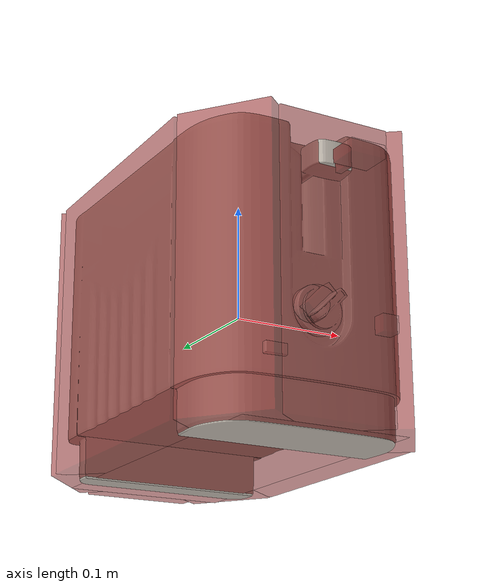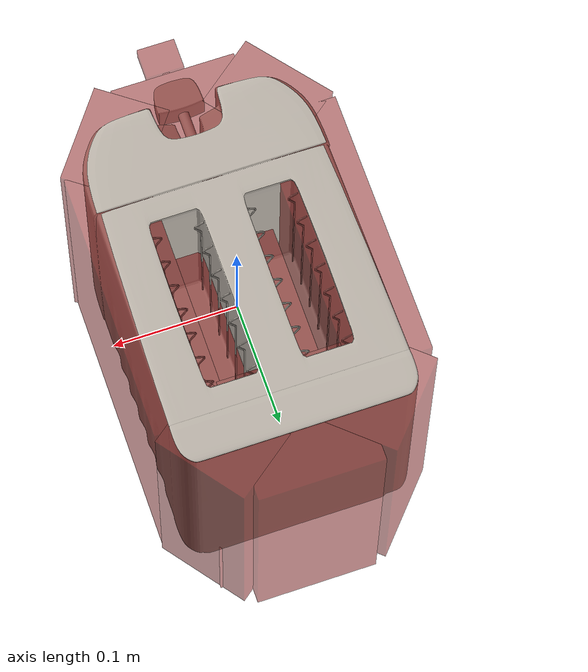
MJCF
<?xml version='1.0' encoding='UTF-8'?>
<mujoco model="model">
  <option timestep="0.002" gravity="0.0 0.0 -9.81"/>
  <compiler angle="radian"/>
  <asset>
    <mesh file="visuals/button_cancel.obj" name="button_cancel_vis"/>
    <mesh file="visuals/knob_doneness.obj" name="knob_doneness_vis"/>
    <mesh file="visuals/lever.obj" name="lever_vis"/>
    <mesh file="visuals/Body001.obj" name="Body001_vis"/>
    <mesh file="visuals/Body002.obj" name="Body002_vis"/>
    <texture file="visuals/T_BC001.png" name="Body001_material" type="2d"/>
    <material name="Body001_material" rgba="1 1 1 1.0" texture="Body001_material" shininess="0.141421377658844" specular="0.3103448502657381"/>
    <texture file="visuals/T_BC001.png" name="button_cancel_material" type="2d"/>
    <material name="button_cancel_material" rgba="1 1 1 1.0" texture="button_cancel_material" shininess="0.141421377658844" specular="0.3103448502657381"/>
    <texture file="visuals/T_BC001.png" name="knob_doneness_material" type="2d"/>
    <material name="knob_doneness_material" rgba="1 1 1 1.0" texture="knob_doneness_material" shininess="0.141421377658844" specular="0.3103448502657381"/>
    <texture file="visuals/T_BC001.png" name="lever_material" type="2d"/>
    <material name="lever_material" rgba="1 1 1 1.0" texture="lever_material" shininess="0.141421377658844" specular="0.3103448502657381"/>
    <texture file="visuals/T_BC001.png" name="Body002_material" type="2d"/>
    <material name="Body002_material" rgba="1 1 1 1.0" texture="Body002_material" shininess="1" specular="1"/>
  </asset>
  <default>
    <default class="visual">
      <geom conaffinity="0" contype="0" group="1" type="mesh"/>
    </default>
    <default class="collision_1">
      <geom group="0" rgba="0.5 0 0 0.5" solref="0.004 1" solimp="0.998 0.998 0.001"/>
    </default>
    <default class="collision_2">
      <geom group="0" rgba="0.5 0 0 0.5" solref="0.004 1" solimp="0.998 0.998 0.001"/>
    </default>
    <default class="collision_3">
      <geom group="0" rgba="0.5 0 0 0.5" solref="0.004 1" solimp="0.998 0.998 0.001"/>
    </default>
    <default class="collision_4">
      <geom group="0" rgba="0.5 0 0 0.5" solref="0.004 1" solimp="0.998 0.998 0.001"/>
    </default>
    <default class="collision_5">
      <geom group="0" rgba="0.5 0 0 0.5" solref="0.004 1" solimp="0.998 0.998 0.001"/>
    </default>
    <default class="spawn">
      <geom group="0" rgba="1 1 1 0.5" contype="0" conaffinity="0"/>
      <site group="0" rgba="1 1 1 0.5"/>
    </default>
    <default class="region">
      <geom group="1" conaffinity="0" contype="0" rgba="0 1 0 0" mass="0"/>
    </default>
  </default>
  <worldbody>
    <body>
      <body name="object">
        <geom mesh="Body001_vis" type="mesh" solimp="0.998 0.998 0.001" solref="0.001 1" friction="0.95 0.3 0.1" class="visual" material="Body001_material"/>
        <geom type="box" pos="-3.6107285268371925e-05 0.020393606275320053 -0.07308340072631836" size="0.07271113246679306 0.15268869698047638 0.04766560718417168" quat="1.0 0.0 0.0 0.0" class="collision_1"/>
        <geom type="box" pos="0.07554543763399124 0.016201067715883255 0.0003441762237343937" size="0.029112735763192177 0.10687019675970078 0.12074115127325058" quat="1.0 0.0 0.0 0.0" class="collision_1"/>
        <geom type="box" pos="-0.07748235762119293 0.01620105654001236 0.0003441762237343937" size="0.031209014356136322 0.10687022656202316 0.12074117362499237" quat="1.0 0.0 0.0 0.0" class="collision_1"/>
        <geom type="box" pos="0.000528864620719105 0.1457206904888153 0.0003441762237343937" size="0.04872778058052063 0.048025019466876984 0.12074119597673416" quat="1.0 0.0 0.0 0.0" class="collision_1"/>
        <geom type="box" pos="0.0005288839456625283 -0.11038106679916382 0.0003441762237343937" size="0.04872778430581093 0.03891860693693161 0.12074121832847595" quat="1.0 0.0 0.0 0.0" class="collision_1"/>
        <geom type="box" pos="-0.06080323085188866 -0.10723009705543518 0.0003441762237343937" size="0.03891861438751221 0.029805803671479225 0.12074137479066849" quat="0.8995000720024109 0.0 0.0 -0.4369206726551056" class="collision_1"/>
        <geom type="box" pos="0.05960759148001671 -0.10679752379655838 0.0003441762237343937" size="0.038918618112802505 0.029805809259414673 0.12074137479066849" quat="0.447503000497818 0.0 0.0 -0.8942824006080627" class="collision_1"/>
        <geom type="box" pos="0.0583539679646492 0.14013373851776123 0.0003441762237343937" size="0.03891861438751221 0.029805803671479225 0.12074137479066849" quat="0.8950638771057129 0.0 0.0 -0.44593796133995056" class="collision_1"/>
        <geom type="box" pos="-0.06130402162671089 0.14134547114372253 0.0003441762237343937" size="0.038918618112802505 0.029805809259414673 0.12074137479066849" quat="0.9127457737922668 0.0 0.0 0.40852802991867065" class="collision_1"/>
        <geom type="box" pos="-7.005915540503338e-05 0.014763657003641129 0.0003441762237343937" size="0.008299797773361206 0.08860282599925995 0.12074124068021774" quat="1.0 0.0 0.0 0.0" class="collision_1"/>
        <body name="button_cancel">
          <joint axis="0.0 1.0 0.0" pos="0.030514664947986603 -0.16445860266685486 -0.04799271374940872" limited="true" name="button_cancel_joint" range="0.0 0.0015" type="slide" damping="1" frictionloss="1" armature=".01" stiffness="4" springref="-1"/>
          <geom mesh="button_cancel_vis" type="mesh" solimp="0.998 0.998 0.001" solref="0.001 1" friction="0.95 0.3 0.1" class="visual" material="button_cancel_material"/>
          <geom class="collision_2" type="box" pos="0.030507957562804222 -0.16649582982063293 -0.04799039661884308" size="0.006886498536914587 0.005580628290772438 0.006886496674269438" quat="1.0 0.0 0.0 0.0" name="button_cancel_main"/>
        </body>
        <body name="knob_doneness">
          <joint axis="0.0 1.0 0.0" pos="-0.035046085715293884 -0.169930562376976 -0.04223669692873955" limited="true" name="knob_doneness_joint" range="0.0 4.625122517784973" type="hinge" damping="0.05" armature="1" frictionloss="0.75"/>
          <geom mesh="knob_doneness_vis" type="mesh" solimp="0.998 0.998 0.001" solref="0.001 1" friction="0.95 0.3 0.1" class="visual" material="knob_doneness_material"/>
          <geom type="cylinder" pos="-0.03526045382022858 -0.16673330962657928 -0.042219895869493484" size="0.012758868746459484 0.004955742508172989" quat="0.5000001788139343 0.5000000596046448 0.4999999403953552 -0.49999985098838806" class="collision_3" friction="100 0.5 0.01"/>
          <geom class="collision_3" type="box" pos="-0.03526045382022858 -0.1763772964477539 -0.042219895869493484" size="0.005777078680694103 0.005000948905944824 0.012391713447868824" quat="0.6532816886901855 -0.2705979645252228 0.2705981135368347 -0.6532812714576721" name="knob_doneness_main" friction="100 0.5 0.01"/>
        </body>
        <body name="lever">
          <joint axis="0.0 0.0 -1.0" pos="-4.842877388000488e-08 -0.17325285077095032 0.07667481899261475" limited="true" name="lever_joint" range="0.0 0.05" type="slide" damping="1" frictionloss="1" armature=".1" stiffness="2.9" springref="-0.5"/>
          <geom class="region" name="reg_slotR" type="box" pos="0.027504260651767254 0.013177476823329926 0.12029127590358257" size="0.017630777157843114 0.08341583406925202 0.07616454346477985"/>
          <geom class="region" name="reg_slotL" type="box" pos="-0.027814048808068037 0.013177469372749329 0.12029127590358257" size="0.017630776692181827 0.08341582661867142 0.07616454346477985"/>
          <geom mesh="lever_vis" type="mesh" solimp="0.998 0.998 0.001" solref="0.001 1" friction="0.95 0.3 0.1" class="visual" material="lever_material"/>
          <geom class="collision_4" type="box" pos="0.00011325774539727718 -0.18168222904205322 0.07672090828418732" size="0.014871207997202873 0.012361089698970318 0.005427742842584848" quat="1.0 0.0 0.0 0.0" name="lever_handle"/>
          <geom type="box" pos="-8.3709936006926e-05 -0.1618761420249939 0.07650603353977203" size="0.0026592821814119816 0.007874620147049427 0.004214613698422909" quat="1.0 0.0 0.0 0.0" class="collision_4"/>
          <geom class="collision_4" type="box" pos="0.02775546908378601 0.01278800331056118 0.0410880371928215" size="0.013377128168940544 0.08018035441637039 0.0012188962427899241" quat="1.0 0.0 0.0 0.0" name="slotR_floor"/>
          <geom class="collision_4" type="box" pos="-0.027562841773033142 0.012787999585270882 0.0410880371928215" size="0.013377128168940544 0.08018035441637039 0.0012188962427899241" quat="1.0 0.0 0.0 0.0" name="slotL_floor"/>
        </body>
        <body name="Body002">
          <geom mesh="Body002_vis" type="mesh" solimp="0.998 0.998 0.001" solref="0.001 1" friction="0.95 0.3 0.1" class="visual" material="Body002_material"/>
        </body>
        <geom class="region" name="reg_main" type="box" pos="1.862645149230957e-09 0.01152210682630539 0.0" size="0.11120301282405853 0.18404532766342163 0.12217145955562592"/>
      </body>
    </body>
  </worldbody>
  <actuator>
    <motor name="button_cancel_joint_actuator" joint="button_cancel_joint" gear="0.1"/>
    <motor name="knob_doneness_joint_actuator" joint="knob_doneness_joint" gear="10"/>
    <motor name="lever_joint_actuator" joint="lever_joint" gear="2"/>
  </actuator>
</mujoco>
